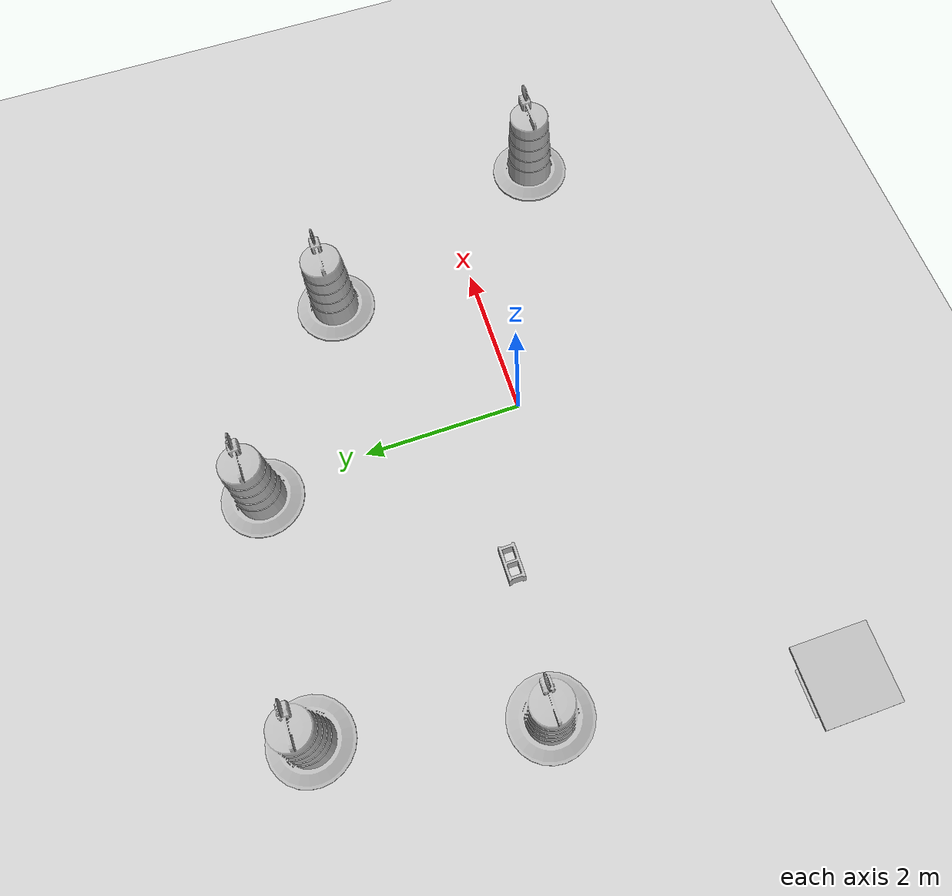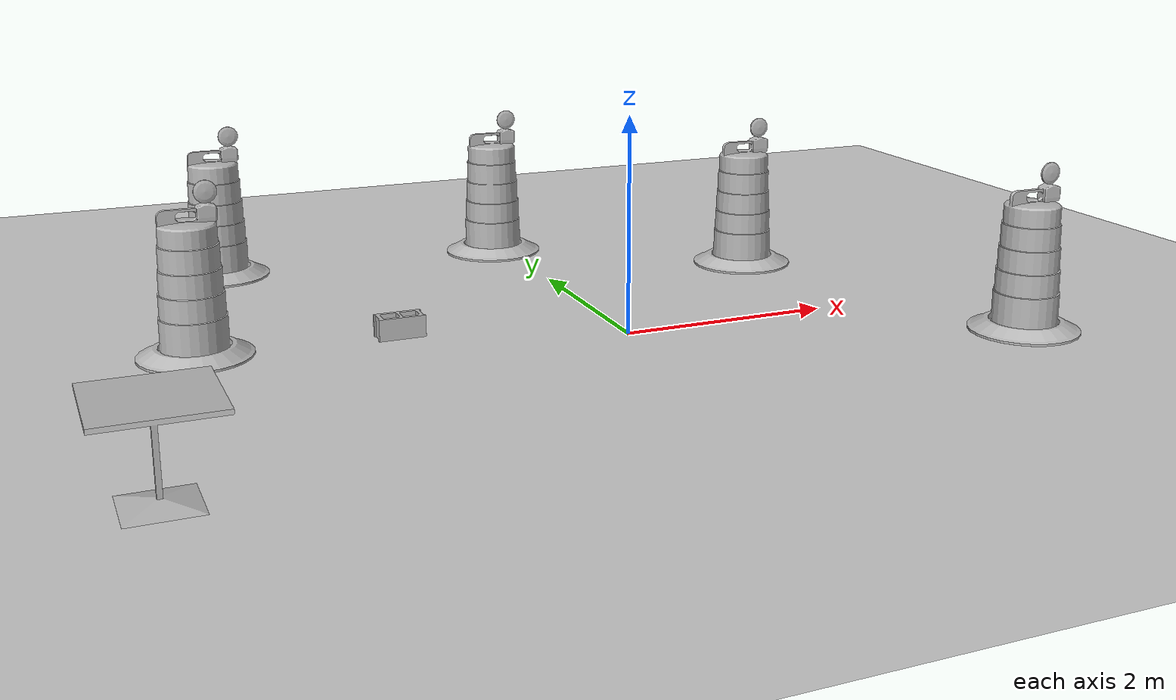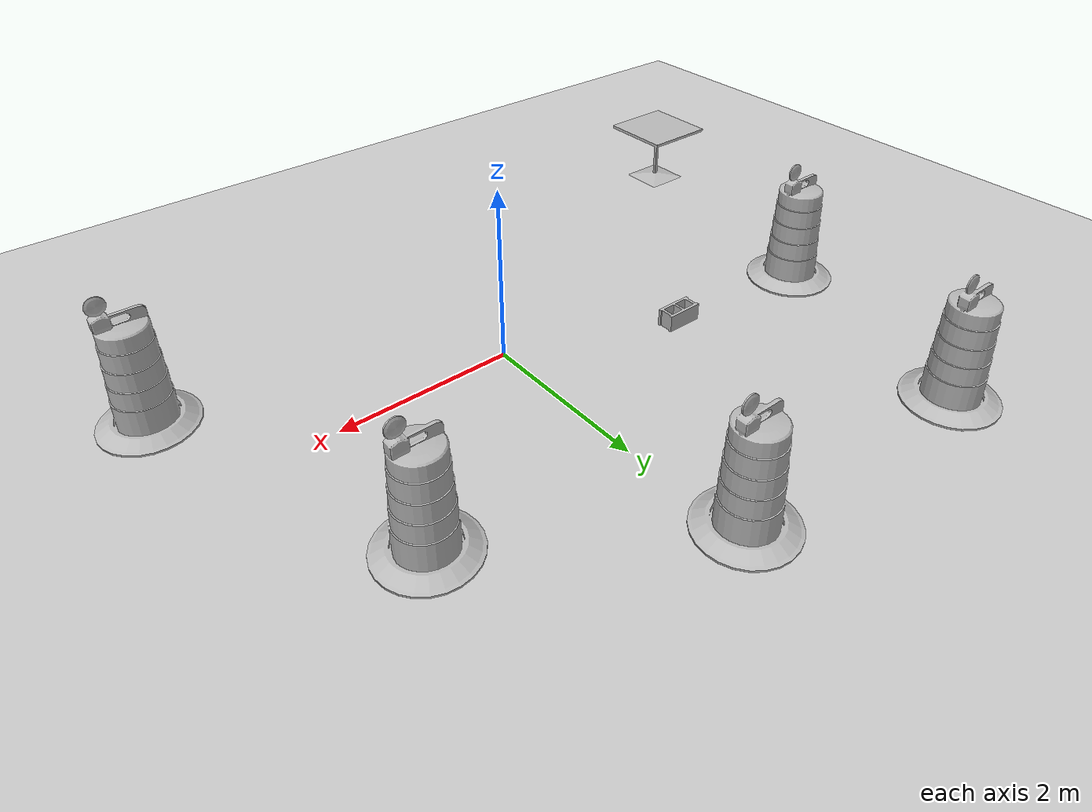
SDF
<sdf version="1.7">
 <world name="default">
  <light name="sun" type="directional">
   <pose>0 0 10 0 -0 0</pose>
   <diffuse>0.8 0.8 0.8 1</diffuse>
   <specular>0.2 0.2 0.2 1</specular>
   <attenuation>
    <range>1000</range>
    <constant>0.9</constant>
    <linear>0.01</linear>
    <quadratic>0.001</quadratic>
   </attenuation>
   <direction>-0.5 0.1 -0.9</direction>
   <spot><inner_angle>0</inner_angle><outer_angle>0</outer_angle><falloff>0</falloff></spot>
  </light>
  <model name="ground_plane">
   <static>1</static>
   <link name="link">
    <collision name="collision">
     <geometry><plane><normal>0 0 1</normal><size>100 100</size></plane></geometry>
     <surface>
      <contact><collide_bitmask>65535</collide_bitmask></contact>
      <friction><ode><mu>100</mu><mu2>50</mu2></ode></friction>
     </surface>
    </collision>
    <visual name="visual">
     <cast_shadows>0</cast_shadows>
     <geometry><plane><normal>0 0 1</normal><size>100 100</size></plane></geometry>
     <material>
      <script><uri>file://media/materials/scripts/gazebo.material</uri><name>Gazebo/Grey</name></script>
     </material>
    </visual>
   </link>
  </model>
  <gravity>0 0 -9.8</gravity>
  <magnetic_field>6e-06 2.3e-05 -4.2e-05</magnetic_field>
  <atmosphere type="adiabatic"/>
  <physics type="ode">
   <max_step_size>0.001</max_step_size>
   <real_time_factor>1</real_time_factor>
   <real_time_update_rate>1000</real_time_update_rate>
  </physics>
  <scene><ambient>0.4 0.4 0.4 1</ambient><background>0.7 0.7 0.7 1</background><shadows>1</shadows></scene>
  <audio><device>default</device></audio>
  <spherical_coordinates>
   <surface_model>EARTH_WGS84</surface_model>
   <latitude_deg>0</latitude_deg>
   <longitude_deg>0</longitude_deg>
   <elevation>0</elevation>
   <heading_deg>0</heading_deg>
  </spherical_coordinates>
  <model name="cinder_block">
   <link name="link">
    <inertial>
     <pose>0 0 0.1016 0 -0 0</pose>
     <mass>5</mass>
     <inertia>
      <ixx>0.028705</ixx>
      <ixy>0</ixy>
      <iyy>0.073708</iyy>
      <ixz>0</ixz>
      <iyz>0</iyz>
      <izz>0.06908</izz>
     </inertia>
    </inertial>
    <visual name="visual">
     <geometry><mesh><uri>model://cinder_block/meshes/cinder_block.dae</uri></mesh></geometry>
    </visual>
    <collision name="left">
     <pose>0 -0.08465 0.1016 0 -0 0</pose>
     <geometry><box><size>0.43495 0.0339 0.2032</size></box></geometry>
     <surface>
      <contact><ode><max_vel>0.1</max_vel><min_depth>0.001</min_depth></ode></contact>
      <friction><ode><mu>1</mu><mu2>1</mu2></ode></friction>
     </surface>
    </collision>
    <collision name="right">
     <pose>0 0.08465 0.1016 0 -0 0</pose>
     <geometry><box><size>0.43495 0.0339 0.2032</size></box></geometry>
     <surface>
      <contact><ode><max_vel>0.1</max_vel><min_depth>0.001</min_depth></ode></contact>
      <friction><ode><mu>1</mu><mu2>1</mu2></ode></friction>
     </surface>
    </collision>
    <collision name="front">
     <pose>0.18625 0 0.1016 0 -0 0</pose>
     <geometry><box><size>0.0339 0.1354 0.203</size></box></geometry>
     <surface>
      <contact><ode><max_vel>0.1</max_vel><min_depth>0.001</min_depth></ode></contact>
      <friction><ode><mu>1</mu><mu2>1</mu2></ode></friction>
     </surface>
    </collision>
    <collision name="middle">
     <pose>0 0 0.1016 0 -0 0</pose>
     <geometry><box><size>0.0339 0.1354 0.203</size></box></geometry>
     <surface>
      <contact><ode><max_vel>0.1</max_vel><min_depth>0.001</min_depth></ode></contact>
      <friction><ode><mu>1</mu><mu2>1</mu2></ode></friction>
     </surface>
    </collision>
    <collision name="back">
     <pose>-0.18625 0 0.1016 0 -0 0</pose>
     <geometry><box><size>0.0339 0.1354 0.203</size></box></geometry>
     <surface>
      <contact><ode><max_vel>0.1</max_vel><min_depth>0.001</min_depth></ode></contact>
      <friction><ode><mu>1</mu><mu2>1</mu2></ode></friction>
     </surface>
    </collision>
   </link>
   <pose>-1.9397 0.738981 -6e-06 -1e-06 2.8e-05 -0</pose>
  </model>
  <model name="Construction Barrel">
   <link name="link">
    <inertial>
     <pose>0 0 0.4 0 -0 0</pose>
     <mass>500</mass>
     <inertia><ixx>51.2096</ixx><iyy>51.2096</iyy><izz>25</izz><ixy>0</ixy><ixz>0</ixz><iyz>0</iyz></inertia>
    </inertial>
    <collision name="collision">
     <geometry><mesh><uri>model://construction_barrel/meshes/construction_barrel.dae</uri></mesh></geometry>
    </collision>
    <visual name="visual">
     <geometry><mesh><uri>model://construction_barrel/meshes/construction_barrel.dae</uri></mesh></geometry>
    </visual>
   </link>
   <pose>-3.09828 3.48103 -6e-06 0 -1.3e-05 -1.3e-05</pose>
  </model>
  <model name="Construction Barrel_0">
   <link name="link">
    <inertial>
     <pose>0 0 0.4 0 -0 0</pose>
     <mass>500</mass>
     <inertia><ixx>51.2096</ixx><iyy>51.2096</iyy><izz>25</izz><ixy>0</ixy><ixz>0</ixz><iyz>0</iyz></inertia>
    </inertial>
    <collision name="collision">
     <geometry><mesh><uri>model://construction_barrel/meshes/construction_barrel.dae</uri></mesh></geometry>
    </collision>
    <visual name="visual">
     <geometry><mesh><uri>model://construction_barrel/meshes/construction_barrel.dae</uri></mesh></geometry>
    </visual>
   </link>
   <pose>-0.139329 3.34062 -0 0 -0 -1e-05</pose>
  </model>
  <model name="Construction Barrel_1">
   <link name="link">
    <inertial>
     <pose>0 0 0.4 0 -0 0</pose>
     <mass>500</mass>
     <inertia><ixx>51.2096</ixx><iyy>51.2096</iyy><izz>25</izz><ixy>0</ixy><ixz>0</ixz><iyz>0</iyz></inertia>
    </inertial>
    <collision name="collision">
     <geometry><mesh><uri>model://construction_barrel/meshes/construction_barrel.dae</uri></mesh></geometry>
    </collision>
    <visual name="visual">
     <geometry><mesh><uri>model://construction_barrel/meshes/construction_barrel.dae</uri></mesh></geometry>
    </visual>
   </link>
   <pose>-3.73056 0.885719 -1e-06 3e-06 7e-06 -9e-06</pose>
  </model>
  <model name="Construction Barrel_2">
   <link name="link">
    <inertial>
     <pose>0 0 0.4 0 -0 0</pose>
     <mass>500</mass>
     <inertia><ixx>51.2096</ixx><iyy>51.2096</iyy><izz>25</izz><ixy>0</ixy><ixz>0</ixz><iyz>0</iyz></inertia>
    </inertial>
    <collision name="collision">
     <geometry><mesh><uri>model://construction_barrel/meshes/construction_barrel.dae</uri></mesh></geometry>
    </collision>
    <visual name="visual">
     <geometry><mesh><uri>model://construction_barrel/meshes/construction_barrel.dae</uri></mesh></geometry>
    </visual>
   </link>
   <pose>2.15067 1.82121 -3e-06 -4e-06 -5e-06 -8e-06</pose>
  </model>
  <model name="Construction Barrel_3">
   <link name="link">
    <inertial>
     <pose>0 0 0.4 0 -0 0</pose>
     <mass>500</mass>
     <inertia><ixx>51.2096</ixx><iyy>51.2096</iyy><izz>25</izz><ixy>0</ixy><ixz>0</ixz><iyz>0</iyz></inertia>
    </inertial>
    <collision name="collision">
     <geometry><mesh><uri>model://construction_barrel/meshes/construction_barrel.dae</uri></mesh></geometry>
    </collision>
    <visual name="visual">
     <geometry><mesh><uri>model://construction_barrel/meshes/construction_barrel.dae</uri></mesh></geometry>
    </visual>
   </link>
   <pose>3.39105 -1.31484 -1e-06 -0 4e-06 -7e-06</pose>
  </model>
  <model name="cafe_table">
   <static>1</static>
   <link name="link">
    <collision name="surface">
     <pose>0 0 0.755 0 -0 0</pose>
     <geometry><box><size>0.913 0.913 0.04</size></box></geometry>
    </collision>
    <collision name="column">
     <pose>0 0 0.37 0 -0 0</pose>
     <geometry><box><size>0.042 0.042 0.74</size></box></geometry>
    </collision>
    <collision name="base">
     <pose>0 0 0.02 0 -0 0</pose>
     <geometry><box><size>0.56 0.56 0.04</size></box></geometry>
    </collision>
    <visual name="visual">
     <geometry><mesh><uri>model://cafe_table/meshes/cafe_table.dae</uri></mesh></geometry>
    </visual>
   </link>
   <pose>-4.42496 -2.19844 0 0 -0 0</pose>
  </model>
 </world>
</sdf>
